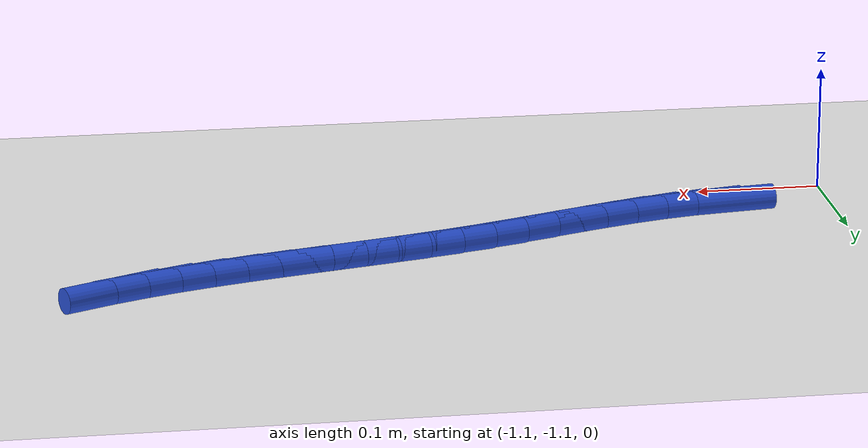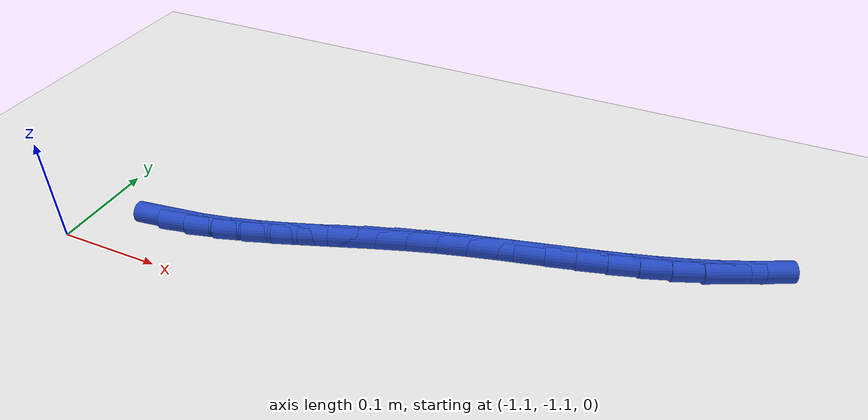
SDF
<sdf version="1.6">
 <world name="default">
  <model name="ground_plane">
   <static>1</static>
   <link name="link">
    <collision name="collision">
     <geometry><plane><normal>0 0 1</normal><size>100 100</size></plane></geometry>
     <surface><friction><ode><mu>100</mu><mu2>50</mu2></ode></friction></surface>
    </collision>
    <visual name="visual">
     <cast_shadows>0</cast_shadows>
     <geometry><plane><normal>0 0 1</normal><size>100 100</size></plane></geometry>
     <material>
      <script><uri>file://media/materials/scripts/gazebo.material</uri><name>Gazebo/WhiteGlow</name></script>
     </material>
    </visual>
   </link>
  </model>
  <model name="line">
   <link name="link_181">
    <pose>-1.0112286693577357 -1.047806645750678 0.01 0 1.57 0.12751556713445072</pose>
    <collision name="collision">
     <geometry><cylinder><radius>0.01</radius><length>0.08</length></cylinder></geometry>
    </collision>
    <visual name="visual">
     <material>
      <script><name>Gazebo/Blue</name><uri>file://media/materials/scripts/gazebo.material</uri></script>
     </material>
     <geometry><cylinder><radius>0.01</radius><length>0.08</length></cylinder></geometry>
    </visual>
   </link>
   <link name="link_182">
    <pose>-0.9851820141938291 -1.0444671719011833 0.01 0 1.57 0.20219569350728864</pose>
    <collision name="collision">
     <geometry><cylinder><radius>0.01</radius><length>0.08</length></cylinder></geometry>
    </collision>
    <visual name="visual">
     <material>
      <script><name>Gazebo/Blue</name><uri>file://media/materials/scripts/gazebo.material</uri></script>
     </material>
     <geometry><cylinder><radius>0.01</radius><length>0.08</length></cylinder></geometry>
    </visual>
   </link>
   <link name="link_183">
    <pose>-0.9591060170516097 -1.0391216713770406 0.01 0 1.57 0.25996900404521467</pose>
    <collision name="collision">
     <geometry><cylinder><radius>0.01</radius><length>0.08</length></cylinder></geometry>
    </collision>
    <visual name="visual">
     <material>
      <script><name>Gazebo/Blue</name><uri>file://media/materials/scripts/gazebo.material</uri></script>
     </material>
     <geometry><cylinder><radius>0.01</radius><length>0.08</length></cylinder></geometry>
    </visual>
   </link>
   <link name="link_184">
    <pose>-0.932991011137911 -1.0321753839774803 0.01 0 1.57 0.3016895233766345</pose>
    <collision name="collision">
     <geometry><cylinder><radius>0.01</radius><length>0.08</length></cylinder></geometry>
    </collision>
    <visual name="visual">
     <material>
      <script><name>Gazebo/Blue</name><uri>file://media/materials/scripts/gazebo.material</uri></script>
     </material>
     <geometry><cylinder><radius>0.01</radius><length>0.08</length></cylinder></geometry>
    </visual>
   </link>
   <link name="link_185">
    <pose>-0.9068273296595671 -1.0240335495017345 0.01 0 1.57 0.32830768802089694</pose>
    <collision name="collision">
     <geometry><cylinder><radius>0.01</radius><length>0.08</length></cylinder></geometry>
    </collision>
    <visual name="visual">
     <material>
      <script><name>Gazebo/Blue</name><uri>file://media/materials/scripts/gazebo.material</uri></script>
     </material>
     <geometry><cylinder><radius>0.01</radius><length>0.08</length></cylinder></geometry>
    </visual>
   </link>
   <link name="link_186">
    <pose>-0.8806053058234137 -1.0151014077490352 0.01 0 1.57 0.3405899787271204</pose>
    <collision name="collision">
     <geometry><cylinder><radius>0.01</radius><length>0.08</length></cylinder></geometry>
    </collision>
    <visual name="visual">
     <material>
      <script><name>Gazebo/Blue</name><uri>file://media/materials/scripts/gazebo.material</uri></script>
     </material>
     <geometry><cylinder><radius>0.01</radius><length>0.08</length></cylinder></geometry>
    </visual>
   </link>
   <link name="link_187">
    <pose>-0.8543152728362843 -1.0057841985186136 0.01 0 1.57 0.33898186883590414</pose>
    <collision name="collision">
     <geometry><cylinder><radius>0.01</radius><length>0.08</length></cylinder></geometry>
    </collision>
    <visual name="visual">
     <material>
      <script><name>Gazebo/Blue</name><uri>file://media/materials/scripts/gazebo.material</uri></script>
     </material>
     <geometry><cylinder><radius>0.01</radius><length>0.08</length></cylinder></geometry>
    </visual>
   </link>
   <link name="link_188">
    <pose>-0.8279475639050127 -0.9964871616097007 0.01 0 1.57 0.32356184580515707</pose>
    <collision name="collision">
     <geometry><cylinder><radius>0.01</radius><length>0.08</length></cylinder></geometry>
    </collision>
    <visual name="visual">
     <material>
      <script><name>Gazebo/Blue</name><uri>file://media/materials/scripts/gazebo.material</uri></script>
     </material>
     <geometry><cylinder><radius>0.01</radius><length>0.08</length></cylinder></geometry>
    </visual>
   </link>
   <link name="link_189">
    <pose>-0.8014925122364338 -0.9876155368215289 0.01 0 1.57 0.2953308510567774</pose>
    <collision name="collision">
     <geometry><cylinder><radius>0.01</radius><length>0.08</length></cylinder></geometry>
    </collision>
    <visual name="visual">
     <material>
      <script><name>Gazebo/Blue</name><uri>file://media/materials/scripts/gazebo.material</uri></script>
     </material>
     <geometry><cylinder><radius>0.01</radius><length>0.08</length></cylinder></geometry>
    </visual>
   </link>
   <link name="link_190">
    <pose>-0.7749437900789994 -0.9795386813024788 0.01 0 1.57 0.2670875470025479</pose>
    <collision name="collision">
     <geometry><cylinder><radius>0.01</radius><length>0.08</length></cylinder></geometry>
    </collision>
    <visual name="visual">
     <material>
      <script><name>Gazebo/Blue</name><uri>file://media/materials/scripts/gazebo.material</uri></script>
     </material>
     <geometry><cylinder><radius>0.01</radius><length>0.08</length></cylinder></geometry>
    </visual>
   </link>
   <link name="link_191">
    <pose>-0.7483294643830363 -0.972256333244399 0.01 0 1.57 0.24667018891442472</pose>
    <collision name="collision">
     <geometry><cylinder><radius>0.01</radius><length>0.08</length></cylinder></geometry>
    </collision>
    <visual name="visual">
     <material>
      <script><name>Gazebo/Blue</name><uri>file://media/materials/scripts/gazebo.material</uri></script>
     </material>
     <geometry><cylinder><radius>0.01</radius><length>0.08</length></cylinder></geometry>
    </visual>
   </link>
   <link name="link_192">
    <pose>-0.7216978584709086 -0.9655505479203328 0.01 0 1.57 0.23433228862816421</pose>
    <collision name="collision">
     <geometry><cylinder><radius>0.01</radius><length>0.08</length></cylinder></geometry>
    </collision>
    <visual name="visual">
     <material>
      <script><name>Gazebo/Blue</name><uri>file://media/materials/scripts/gazebo.material</uri></script>
     </material>
     <geometry><cylinder><radius>0.01</radius><length>0.08</length></cylinder></geometry>
    </visual>
   </link>
   <link name="link_193">
    <pose>-0.6950975561354215 -0.9592005814858208 0.01 0 1.57 0.23018988904776078</pose>
    <collision name="collision">
     <geometry><cylinder><radius>0.01</radius><length>0.08</length></cylinder></geometry>
    </collision>
    <visual name="visual">
     <material>
      <script><name>Gazebo/Blue</name><uri>file://media/materials/scripts/gazebo.material</uri></script>
     </material>
     <geometry><cylinder><radius>0.01</radius><length>0.08</length></cylinder></geometry>
    </visual>
   </link>
   <link name="link_194">
    <pose>-0.6685771411693787 -0.9529856900964048 0.01 0 1.57 0.2343442133015602</pose>
    <collision name="collision">
     <geometry><cylinder><radius>0.01</radius><length>0.08</length></cylinder></geometry>
    </collision>
    <visual name="visual">
     <material>
      <script><name>Gazebo/Blue</name><uri>file://media/materials/scripts/gazebo.material</uri></script>
     </material>
     <geometry><cylinder><radius>0.01</radius><length>0.08</length></cylinder></geometry>
    </visual>
   </link>
   <link name="link_195">
    <pose>-0.6421851973655845 -0.946685129907625 0.01 0 1.57 0.24688957060546307</pose>
    <collision name="collision">
     <geometry><cylinder><radius>0.01</radius><length>0.08</length></cylinder></geometry>
    </collision>
    <visual name="visual">
     <material>
      <script><name>Gazebo/Blue</name><uri>file://media/materials/scripts/gazebo.material</uri></script>
     </material>
     <geometry><cylinder><radius>0.01</radius><length>0.08</length></cylinder></geometry>
    </visual>
   </link>
   <link name="link_196">
    <pose>-0.6159703085168425 -0.9400781570750225 0.01 0 1.57 0.26790417401069344</pose>
    <collision name="collision">
     <geometry><cylinder><radius>0.01</radius><length>0.08</length></cylinder></geometry>
    </collision>
    <visual name="visual">
     <material>
      <script><name>Gazebo/Blue</name><uri>file://media/materials/scripts/gazebo.material</uri></script>
     </material>
     <geometry><cylinder><radius>0.01</radius><length>0.08</length></cylinder></geometry>
    </visual>
   </link>
   <link name="link_197">
    <pose>-0.5899810584159568 -0.9329440277541379 0.01 0 1.57 0.29742266224697816</pose>
    <collision name="collision">
     <geometry><cylinder><radius>0.01</radius><length>0.08</length></cylinder></geometry>
    </collision>
    <visual name="visual">
     <material>
      <script><name>Gazebo/Blue</name><uri>file://media/materials/scripts/gazebo.material</uri></script>
     </material>
     <geometry><cylinder><radius>0.01</radius><length>0.08</length></cylinder></geometry>
    </visual>
   </link>
   <link name="link_198">
    <pose>-0.5642660308557317 -0.9250619981005124 0.01 0 1.57 0.3353900305640003</pose>
    <collision name="collision">
     <geometry><cylinder><radius>0.01</radius><length>0.08</length></cylinder></geometry>
    </collision>
    <visual name="visual">
     <material>
      <script><name>Gazebo/Blue</name><uri>file://media/materials/scripts/gazebo.material</uri></script>
     </material>
     <geometry><cylinder><radius>0.01</radius><length>0.08</length></cylinder></geometry>
    </visual>
   </link>
   <link name="link_199">
    <pose>-0.5388738096289709 -0.9162113242696868 0.01 0 1.57 0.38155956339479646</pose>
    <collision name="collision">
     <geometry><cylinder><radius>0.01</radius><length>0.08</length></cylinder></geometry>
    </collision>
    <visual name="visual">
     <material>
      <script><name>Gazebo/Blue</name><uri>file://media/materials/scripts/gazebo.material</uri></script>
     </material>
     <geometry><cylinder><radius>0.01</radius><length>0.08</length></cylinder></geometry>
    </visual>
   </link>
   <link name="link_200">
    <pose>-0.5138530134857516 -0.9061724251094643 0.01 0 1.57 0.4321809955175316</pose>
    <collision name="collision">
     <geometry><cylinder><radius>0.01</radius><length>0.08</length></cylinder></geometry>
    </collision>
    <visual name="visual">
     <material>
      <script><name>Gazebo/Blue</name><uri>file://media/materials/scripts/gazebo.material</uri></script>
     </material>
     <geometry><cylinder><radius>0.01</radius><length>0.08</length></cylinder></geometry>
    </visual>
   </link>
  </model>
 </world>
</sdf>
